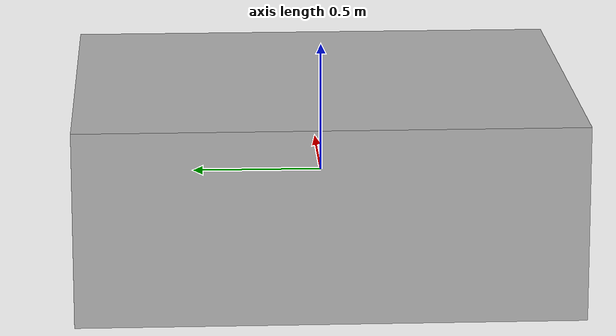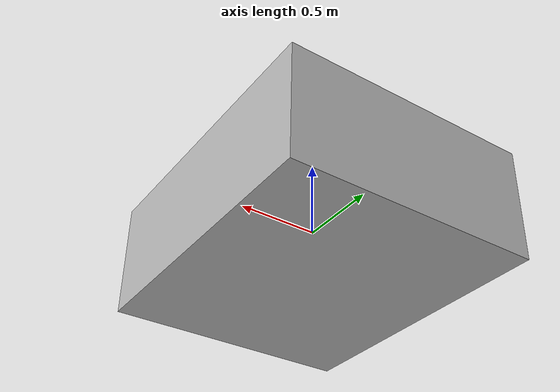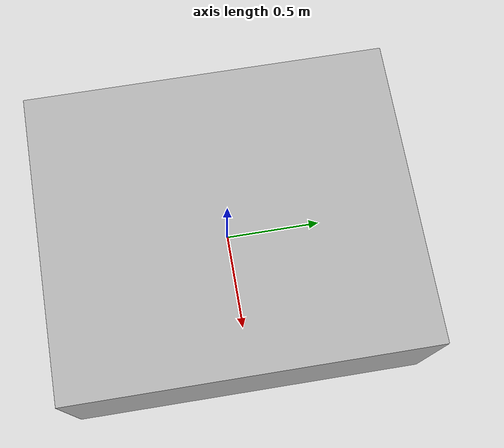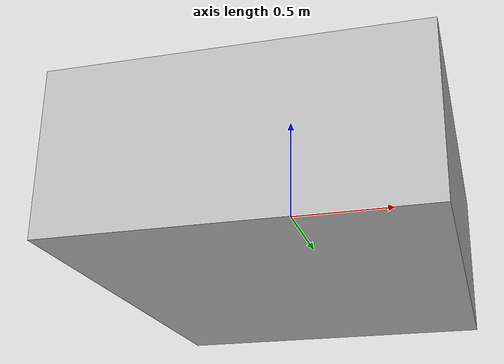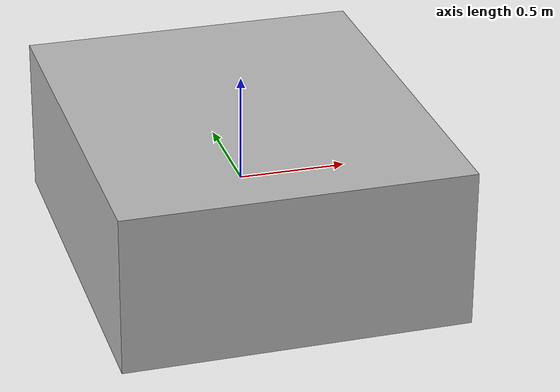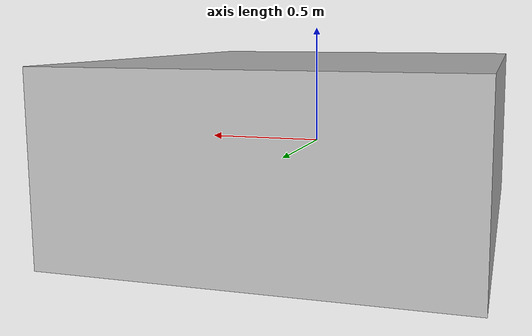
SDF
<?xml version='1.0'?>
<sdf version="1.4">
<model name="filling_line_box_3">
    <static>true</static>
    <link name="link">
      <pose>0 0 -0.005 0 0 0</pose>
      <collision name="collision">
        <geometry>
          <box>
            <size>1.6 1.9 0.74</size>
          </box>
        </geometry>
      </collision>
      <visual name="visual">
        <geometry>
          <box>
            <size>1.6 1.9 0.74</size>
          </box>
        </geometry>
      </visual>
    </link>
  </model>
</sdf>
